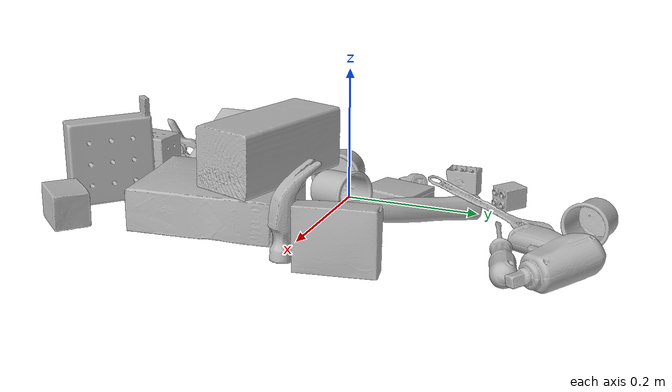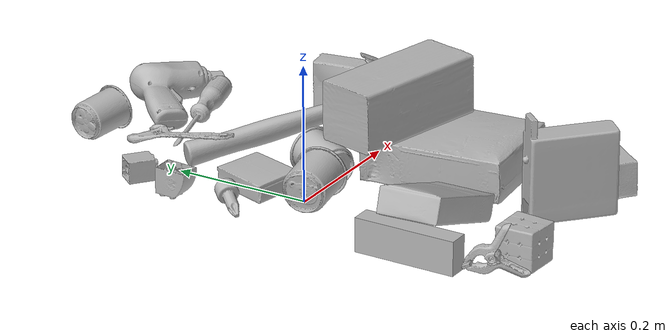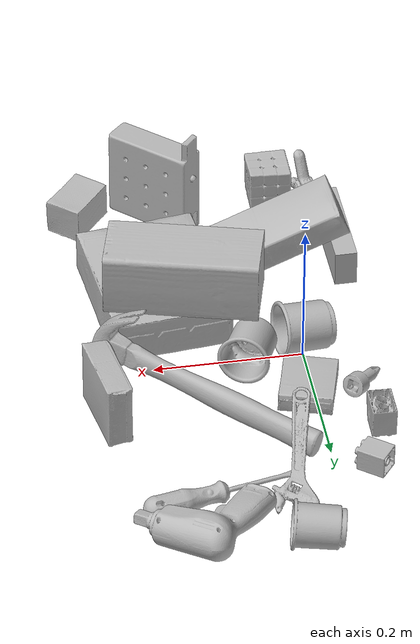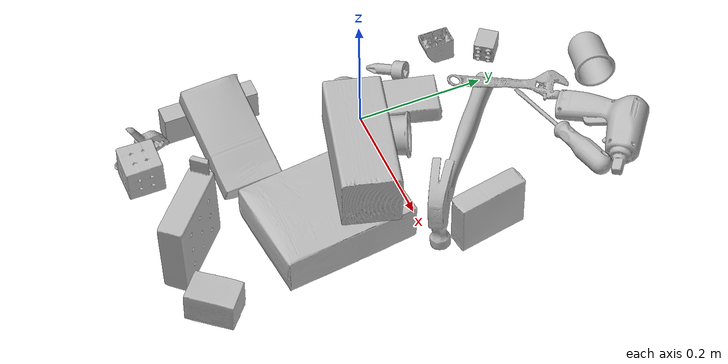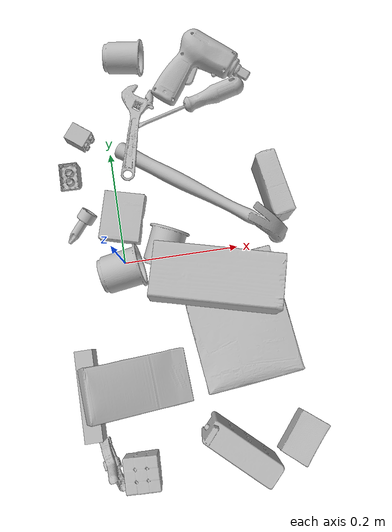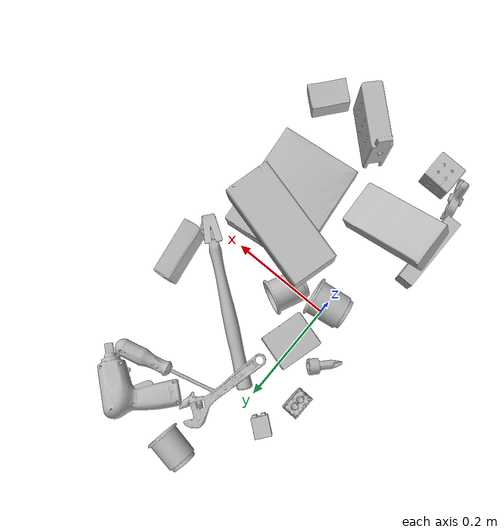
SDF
<sdf version="1.4">
  <world name="default">
    <light name="light1" type="point">
      <pose>0 0 1 0 0 0</pose>
      <diffuse>3 3 3 1</diffuse>
      <specular>3 3 3 1</specular>
    </light>
    <light name="light2" type="point">
      <pose>0 0.5 2 0 0 0</pose>
      <diffuse>1 1 1 1</diffuse>
      <specular>1 1 1 1</specular>
    </light>
    <light name="light3" type="point">
      <pose>0 0.5 2 0 0 0</pose>
      <diffuse>3 3 3 1</diffuse>
      <specular>3 3 3 1</specular>
    </light>
    <scene>
      <ambient>0.7 0.7 0.7</ambient>
    </scene>
    <model name="box21">
      <link name="link_box21">
        <collision name="default">
          <geometry>
            <mesh>
              <uri>model://cracker_box/collision_meshes/collision.obj</uri>
              <scale>1.0 1.0 1.0</scale>
            </mesh>
          </geometry>
          <surface>
            <friction>
              <ode>
                <mu>0.5</mu>
                <mu2>0.5</mu2>
              </ode>
            </friction>
          <contact>
        <ode>
            <max_vel>0</max_vel>
            <min_depth>0.0001</min_depth>
            <kp>1e8</kp>
        </ode>
    </contact></surface>
        </collision>
        <visual name="default">
          <geometry>
            <mesh>
              <uri>model://cracker_box/visual_meshes/visual.dae</uri>
              <scale>1.0 1.0 1.0</scale>
            </mesh>
          </geometry>
        </visual>
        <inertial>
          <mass>2.732837677001953</mass>
          <pose>0.000946416228543967 0.0002543424488976598 -0.0017029533628374338 -0.00031620734042352985 -0.011106490532052917 0.002546795466230165</pose>
          <inertia>
            <ixx>0.0069511193</ixx>
            <iyy>0.011477663</iyy>
            <izz>0.01637968</izz>
            <ixy>0</ixy>
            <ixz>0</ixz>
            <iyz>0</iyz>
          </inertia>
        </inertial>
      </link>
      <pose>0.17991647124290466 -0.12861032783985138 0.03553280234336853 3.1371229307878385 -0.016561978863434492 -1.4556963661200397</pose>
    </model>
    <model name="box22">
      <link name="link_box22">
        <collision name="default">
          <geometry>
            <mesh>
              <uri>model://jenga/collision_meshes/collision.obj</uri>
              <scale>1.0 1.0 1.0</scale>
            </mesh>
          </geometry>
          <surface>
            <friction>
              <ode>
                <mu>0.5</mu>
                <mu2>0.5</mu2>
              </ode>
            </friction>
          <contact>
        <ode>
            <max_vel>0</max_vel>
            <min_depth>0.0001</min_depth>
            <kp>1e8</kp>
        </ode>
    </contact></surface>
        </collision>
        <visual name="default">
          <geometry>
            <mesh>
              <uri>model://jenga/visual_meshes/visual.dae</uri>
              <scale>1.0 1.0 1.0</scale>
            </mesh>
          </geometry>
        </visual>
        <inertial>
          <mass>0.1563216596841812</mass>
          <pose>-2.502855807051674e-07 -0.00010250010382151231 -4.0923401684267446e-05 0.0 -7.34215461761844e-07 0.0</pose>
          <inertia>
            <ixx>4.3258e-05</ixx>
            <iyy>0.000293115</iyy>
            <izz>0.0003129252</izz>
            <ixy>0</ixy>
            <ixz>0</ixz>
            <iyz>0</iyz>
          </inertia>
        </inertial>
      </link>
      <pose>-0.08482448011636734 -0.21513576805591583 0.02470160648226738 1.5775282117407785 -1.1213023212785045e-05 1.5708073207957607</pose>
    </model>
    <model name="box23">
      <link name="link_box23">
        <collision name="default">
          <geometry>
            <mesh>
              <uri>model://pudding_box/collision_meshes/collision.obj</uri>
              <scale>1.0 1.0 1.0</scale>
            </mesh>
          </geometry>
          <surface>
            <friction>
              <ode>
                <mu>0.5</mu>
                <mu2>0.5</mu2>
              </ode>
            </friction>
          <contact>
        <ode>
            <max_vel>0</max_vel>
            <min_depth>0.0001</min_depth>
            <kp>1e8</kp>
        </ode>
    </contact></surface>
        </collision>
        <visual name="default">
          <geometry>
            <mesh>
              <uri>model://pudding_box/visual_meshes/visual.dae</uri>
              <scale>1.0 1.0 1.0</scale>
            </mesh>
          </geometry>
        </visual>
        <inertial>
          <mass>0.32993465662002563</mass>
          <pose>0.0004894821904599667 0.0008067885064519942 -0.0005188827635720372 0.005213102236317791 -0.0066038015122011 0.020079823288174207</pose>
          <inertia>
            <ixx>0.00037297411</ixx>
            <iyy>0.00025093966</iyy>
            <izz>0.0005507938</izz>
            <ixy>0</ixy>
            <ixz>0</ixz>
            <iyz>0</iyz>
          </inertia>
        </inertial>
      </link>
      <pose>0.2728736698627472 0.08747509121894836 0.04457632079720497 -0.02029003350159197 -1.548068470983242 -2.9612708887862342</pose>
    </model>
    <model name="cup1">
      <link name="link_cup1">
        <collision name="default">
          <geometry>
            <mesh>
              <uri>model://c_cups/collision_meshes/collision.obj</uri>
              <scale>1.0 1.0 1.0</scale>
            </mesh>
          </geometry>
          <surface>
            <friction>
              <ode>
                <mu>0.5</mu>
                <mu2>0.5</mu2>
              </ode>
            </friction>
          <contact>
        <ode>
            <max_vel>0</max_vel>
            <min_depth>0.0001</min_depth>
            <kp>1e8</kp>
        </ode>
    </contact></surface>
        </collision>
        <visual name="default">
          <geometry>
            <mesh>
              <uri>model://c_cups/visual_meshes/visual.dae</uri>
              <scale>1.0 1.0 1.0</scale>
            </mesh>
          </geometry>
        </visual>
        <inertial>
          <mass>0.05159630998969078</mass>
          <pose>0.0007237254758365452 0.0020153908990323544 -0.001275097718462348 0.3021575981944983 0.01346171900925468 -0.08771841488334552</pose>
          <inertia>
            <ixx>3.8371487e-05</ixx>
            <iyy>3.7693397e-05</iyy>
            <izz>3.3934528e-05</izz>
            <ixy>0</ixy>
            <ixz>0</ixz>
            <iyz>0</iyz>
          </inertia>
        </inertial>
      </link>
      <pose>0.04835089296102524 0.36717140674591064 0.029830537736415863 1.488048900028035 0.3881240051742751 1.3580105017236996</pose>
    </model>
    <model name="cup2">
      <link name="link_cup2">
        <collision name="default">
          <geometry>
            <mesh>
              <uri>model://d_cups/collision_meshes/collision.obj</uri>
              <scale>1.0 1.0 1.0</scale>
            </mesh>
          </geometry>
          <surface>
            <friction>
              <ode>
                <mu>0.5</mu>
                <mu2>0.5</mu2>
              </ode>
            </friction>
          <contact>
        <ode>
            <max_vel>0</max_vel>
            <min_depth>0.0001</min_depth>
            <kp>1e8</kp>
        </ode>
    </contact></surface>
        </collision>
        <visual name="default">
          <geometry>
            <mesh>
              <uri>model://d_cups/visual_meshes/visual.dae</uri>
              <scale>1.0 1.0 1.0</scale>
            </mesh>
          </geometry>
        </visual>
        <inertial>
          <mass>0.029099034145474434</mass>
          <pose>0.0008068051538430154 0.0019117402844130993 -0.0022666510194540024 0.24013101341738077 -0.2470893725106806 0.5942204262094062</pose>
          <inertia>
            <ixx>2.436274e-05</ixx>
            <iyy>2.429223e-05</iyy>
            <izz>2.2052422e-05</izz>
            <ixy>0</ixy>
            <ixz>0</ixz>
            <iyz>0</iyz>
          </inertia>
        </inertial>
      </link>
      <pose>0.07373348623514175 0.012461014091968536 0.03257007524371147 -1.4750663543090898 0.08027426732919822 -0.4271128935540581</pose>
    </model>
    <model name="box11">
      <link name="link_box11">
        <collision name="default">
          <geometry>
            <mesh>
              <uri>model://sugar_box/collision_meshes/collision.obj</uri>
              <scale>1.0 1.0 1.0</scale>
            </mesh>
          </geometry>
          <surface>
            <friction>
              <ode>
                <mu>0.5</mu>
                <mu2>0.5</mu2>
              </ode>
            </friction>
          <contact>
        <ode>
            <max_vel>0</max_vel>
            <min_depth>0.0001</min_depth>
            <kp>1e8</kp>
        </ode>
    </contact></surface>
        </collision>
        <visual name="default">
          <geometry>
            <mesh>
              <uri>model://sugar_box/visual_meshes/visual.dae</uri>
              <scale>1.0 1.0 1.0</scale>
            </mesh>
          </geometry>
        </visual>
        <inertial>
          <mass>0.6083751916885376</mass>
          <pose>0.0010343727190047503 3.849109634757042e-05 -0.00036364805418998003 -0.00040462662026216373 0.00105066363904409 0.002615379021562279</pose>
          <inertia>
            <ixx>0.0005068966</ixx>
            <iyy>0.0016383935</iyy>
            <izz>0.0019613528</izz>
            <ixy>0</ixy>
            <ixz>0</ixz>
            <iyz>0</iyz>
          </inertia>
        </inertial>
      </link>
      <pose>-0.004822131711989641 -0.20929239690303802 0.048798903822898865 3.1367900397021553 -0.35819137894444825 -3.078391272616239</pose>
    </model>
    <model name="box12">
      <link name="link_box12">
        <collision name="default">
          <geometry>
            <mesh>
              <uri>model://wood_block/collision_meshes/collision.obj</uri>
              <scale>1.0 1.0 1.0</scale>
            </mesh>
          </geometry>
          <surface>
            <friction>
              <ode>
                <mu>0.5</mu>
                <mu2>0.5</mu2>
              </ode>
            </friction>
          <contact>
        <ode>
            <max_vel>0</max_vel>
            <min_depth>0.0001</min_depth>
            <kp>1e8</kp>
        </ode>
    </contact></surface>
        </collision>
        <visual name="default">
          <geometry>
            <mesh>
              <uri>model://wood_block/visual_meshes/visual.dae</uri>
              <scale>1.0 1.0 1.0</scale>
            </mesh>
          </geometry>
        </visual>
        <inertial>
          <mass>1.904224157333374</mass>
          <pose>-5.813315510749817e-06 -0.000570809468626976 0.0002640858292579651 -0.05220878944738684 -0.005192694452018099 -0.006861378422653873</pose>
          <inertia>
            <ixx>0.00254814</ixx>
            <iyy>0.008049577</iyy>
            <izz>0.008019466</izz>
            <ixy>0</ixy>
            <ixz>0</ixz>
            <iyz>0</iyz>
          </inertia>
        </inertial>
      </link>
      <pose>0.14998751878738403 -0.060347333550453186 0.1141720861196518 -1.5941777418745975 -0.004637651811319861 -0.25951951003062274</pose>
    </model>
    <model name="box13">
      <link name="link_box13">
        <collision name="default">
          <geometry>
            <mesh>
              <uri>model://gelatin_box/collision_meshes/collision.obj</uri>
              <scale>1.0 1.0 1.0</scale>
            </mesh>
          </geometry>
          <surface>
            <friction>
              <ode>
                <mu>0.5</mu>
                <mu2>0.5</mu2>
              </ode>
            </friction>
          <contact>
        <ode>
            <max_vel>0</max_vel>
            <min_depth>0.0001</min_depth>
            <kp>1e8</kp>
        </ode>
    </contact></surface>
        </collision>
        <visual name="default">
          <geometry>
            <mesh>
              <uri>model://gelatin_box/visual_meshes/visual.dae</uri>
              <scale>1.0 1.0 1.0</scale>
            </mesh>
          </geometry>
        </visual>
        <inertial>
          <mass>0.15982484817504883</mass>
          <pose>0.0004319618456065655 0.00011156871187267825 -0.0003640321083366871 -0.001050372093012012 -0.00475581868936722 0.016440559471878533</pose>
          <inertia>
            <ixx>0.000112823305</ixx>
            <iyy>8.0589096e-05</iyy>
            <izz>0.0001717422</izz>
            <ixy>0</ixy>
            <ixz>0</ixz>
            <iyz>0</iyz>
          </inertia>
        </inertial>
      </link>
      <pose>0.00792890228331089 0.07985878735780716 0.014580635353922844 -3.125865716292575 -0.02571926780796743 -0.2639611852440251</pose>
    </model>
    <model name="box14">
      <link name="link_box14">
        <collision name="default">
          <geometry>
            <mesh>
              <uri>model://rubiks_cube/collision_meshes/collision.obj</uri>
              <scale>1.0 1.0 1.0</scale>
            </mesh>
          </geometry>
          <surface>
            <friction>
              <ode>
                <mu>0.5</mu>
                <mu2>0.5</mu2>
              </ode>
            </friction>
          <contact>
        <ode>
            <max_vel>0</max_vel>
            <min_depth>0.0001</min_depth>
            <kp>1e8</kp>
        </ode>
    </contact></surface>
        </collision>
        <visual name="default">
          <geometry>
            <mesh>
              <uri>model://rubiks_cube/visual_meshes/visual.dae</uri>
              <scale>1.0 1.0 1.0</scale>
            </mesh>
          </geometry>
        </visual>
        <inertial>
          <mass>0.19606205821037292</mass>
          <pose>2.6721043468569405e-05 5.256967051536776e-05 -7.264316536748083e-06 -0.05467227514375443 -0.09814085307594407 -0.03445353526761094</pose>
          <inertia>
            <ixx>0.00010833746</ixx>
            <iyy>0.000107832224</iyy>
            <izz>0.00010923522</izz>
            <ixy>0</ixy>
            <ixz>0</ixz>
            <iyz>0</iyz>
          </inertia>
        </inertial>
      </link>
      <pose>-0.014541269280016422 -0.34961894154548645 0.029330063611268997 1.5776132391425068 -0.016678240379339657 1.5463686235330774</pose>
    </model>
    <model name="cup15">
      <link name="link_cup15">
        <collision name="default">
          <geometry>
            <mesh>
              <uri>model://e_cups/collision_meshes/collision.obj</uri>
              <scale>1.0 1.0 1.0</scale>
            </mesh>
          </geometry>
          <surface>
            <friction>
              <ode>
                <mu>0.5</mu>
                <mu2>0.5</mu2>
              </ode>
            </friction>
          <contact>
        <ode>
            <max_vel>0</max_vel>
            <min_depth>0.0001</min_depth>
            <kp>1e8</kp>
        </ode>
    </contact></surface>
        </collision>
        <visual name="default">
          <geometry>
            <mesh>
              <uri>model://e_cups/visual_meshes/visual.dae</uri>
              <scale>1.0 1.0 1.0</scale>
            </mesh>
          </geometry>
        </visual>
        <inertial>
          <mass>0.09305236488580704</mass>
          <pose>0.0011355740716680884 0.0028797851409763098 -0.003882972989231348 0.6952374393777071 0.08767548394821409 -0.5235242886817723</pose>
          <inertia>
            <ixx>8.204892e-05</ixx>
            <iyy>8.5752865e-05</iyy>
            <izz>7.844823e-05</izz>
            <ixy>0</ixy>
            <ixz>0</ixz>
            <iyz>0</iyz>
          </inertia>
        </inertial>
      </link>
      <pose>-0.004500194452702999 -0.01582631841301918 0.03487663343548775 -1.479915512367207 0.4384902738117606 -1.383373073080684</pose>
    </model>
    <model name="toy1">
      <link name="link_toy1">
        <collision name="default">
          <geometry>
            <mesh>
              <uri>model://foam_brick/collision_meshes/collision.obj</uri>
              <scale>1.0 1.0 1.0</scale>
            </mesh>
          </geometry>
          <surface>
            <friction>
              <ode>
                <mu>0.5</mu>
                <mu2>0.5</mu2>
              </ode>
            </friction>
          <contact>
        <ode>
            <max_vel>0</max_vel>
            <min_depth>0.0001</min_depth>
            <kp>1e8</kp>
        </ode>
    </contact></surface>
        </collision>
        <visual name="default">
          <geometry>
            <mesh>
              <uri>model://foam_brick/visual_meshes/visual.dae</uri>
              <scale>1.0 1.0 1.0</scale>
            </mesh>
          </geometry>
        </visual>
        <inertial>
          <mass>0.27397871017456055</mass>
          <pose>-0.0002522472059354186 0.0003458441060502082 -0.00025321010616607964 -0.2940210021807357 0.01727444677850634 -0.0007449878009638903</pose>
          <inertia>
            <ixx>0.00011967903</ixx>
            <iyy>0.00019107372</iyy>
            <izz>0.00019350204</izz>
            <ixy>0</ixy>
            <ixz>0</ixz>
            <iyz>0</iyz>
          </inertia>
        </inertial>
      </link>
      <pose>0.25535938143730164 -0.33363965153694153 0.025496831163764 3.1325083533572653 0.006607246785811712 0.8787187790228751</pose>
    </model>
    <model name="toy2">
      <link name="link_toy2">
        <collision name="default">
          <geometry>
            <mesh>
              <uri>model://b_toy_airplane/collision_meshes/collision.obj</uri>
              <scale>1.0 1.0 1.0</scale>
            </mesh>
          </geometry>
          <surface>
            <friction>
              <ode>
                <mu>0.5</mu>
                <mu2>0.5</mu2>
              </ode>
            </friction>
          <contact>
        <ode>
            <max_vel>0</max_vel>
            <min_depth>0.0001</min_depth>
            <kp>1e8</kp>
        </ode>
    </contact></surface>
        </collision>
        <visual name="default">
          <geometry>
            <mesh>
              <uri>model://b_toy_airplane/visual_meshes/visual.dae</uri>
              <scale>1.0 1.0 1.0</scale>
            </mesh>
          </geometry>
        </visual>
        <inertial>
          <mass>0.24932990968227386</mass>
          <pose>0.005081362556666136 0.004015582613646984 0.00954306498169899 -0.04001809188182278 -0.04022184417958596 -0.5601502893643007</pose>
          <inertia>
            <ixx>0.0004628856</ixx>
            <iyy>0.00018501986</iyy>
            <izz>0.00057587575</izz>
            <ixy>0</ixy>
            <ixz>0</ixz>
            <iyz>0</iyz>
          </inertia>
        </inertial>
      </link>
      <pose>0.17551252245903015 0.34176063537597656 0.01697787642478943 0.18487648366304296 0.1134990765894474 -0.6648720310121619</pose>
    </model>
    <model name="toy3">
      <link name="link_toy3">
        <collision name="default">
          <geometry>
            <mesh>
              <uri>model://f_lego_duplo/collision_meshes/collision.obj</uri>
              <scale>1.0 1.0 1.0</scale>
            </mesh>
          </geometry>
          <surface>
            <friction>
              <ode>
                <mu>0.5</mu>
                <mu2>0.5</mu2>
              </ode>
            </friction>
          <contact>
        <ode>
            <max_vel>0</max_vel>
            <min_depth>0.0001</min_depth>
            <kp>1e8</kp>
        </ode>
    </contact></surface>
        </collision>
        <visual name="default">
          <geometry>
            <mesh>
              <uri>model://f_lego_duplo/visual_meshes/visual.dae</uri>
              <scale>1.0 1.0 1.0</scale>
            </mesh>
          </geometry>
        </visual>
        <inertial>
          <mass>0.027739444747567177</mass>
          <pose>2.369416324654594e-05 0.00013393194240052253 0.0018837876850739121 0.02983859902212722 -0.014425048030447486 -0.6756637170693943</pose>
          <inertia>
            <ixx>5.8614983e-06</ixx>
            <iyy>5.913718e-06</iyy>
            <izz>5.0880294e-06</izz>
            <ixy>0</ixy>
            <ixz>0</ixz>
            <iyz>0</iyz>
          </inertia>
        </inertial>
      </link>
      <pose>-0.048521172255277634 0.234675332903862 0.016207240521907806 1.579063706040582 5.0863346493082657e-05 0.9158116399142889</pose>
    </model>
    <model name="toy4">
      <link name="link_toy4">
        <collision name="default">
          <geometry>
            <mesh>
              <uri>model://d_toy_airplane/collision_meshes/collision.obj</uri>
              <scale>1.0 1.0 1.0</scale>
            </mesh>
          </geometry>
          <surface>
            <friction>
              <ode>
                <mu>0.5</mu>
                <mu2>0.5</mu2>
              </ode>
            </friction>
          <contact>
        <ode>
            <max_vel>0</max_vel>
            <min_depth>0.0001</min_depth>
            <kp>1e8</kp>
        </ode>
    </contact></surface>
        </collision>
        <visual name="default">
          <geometry>
            <mesh>
              <uri>model://d_toy_airplane/visual_meshes/visual.dae</uri>
              <scale>1.0 1.0 1.0</scale>
            </mesh>
          </geometry>
        </visual>
        <inertial>
          <mass>0.018694162368774414</mass>
          <pose>9.410315396962687e-05 -5.80932610318996e-05 -0.011728095822036266 0.0002670379770250361 0.004678992469792915 0.5194762078456472</pose>
          <inertia>
            <ixx>5.6041463e-06</ixx>
            <iyy>5.6083722e-06</iyy>
            <izz>1.6919282e-06</izz>
            <ixy>0</ixy>
            <ixz>0</ixz>
            <iyz>0</iyz>
          </inertia>
        </inertial>
      </link>
      <pose>-0.06973642855882645 0.07324579358100891 0.011044085025787354 -2.419602669391377 -1.2639555432694574 -3.0691854722642766</pose>
    </model>
    <model name="toy5">
      <link name="link_toy5">
        <collision name="default">
          <geometry>
            <mesh>
              <uri>model://d_lego_duplo/collision_meshes/collision.obj</uri>
              <scale>1.0 1.0 1.0</scale>
            </mesh>
          </geometry>
          <surface>
            <friction>
              <ode>
                <mu>0.5</mu>
                <mu2>0.5</mu2>
              </ode>
            </friction>
          <contact>
        <ode>
            <max_vel>0</max_vel>
            <min_depth>0.0001</min_depth>
            <kp>1e8</kp>
        </ode>
    </contact></surface>
        </collision>
        <visual name="default">
          <geometry>
            <mesh>
              <uri>model://d_lego_duplo/visual_meshes/visual.dae</uri>
              <scale>1.0 1.0 1.0</scale>
            </mesh>
          </geometry>
        </visual>
        <inertial>
          <mass>0.04560890793800354</mass>
          <pose>0.0028305635787546635 0.00016366137424483895 0.0008589806966483593 0.08010848326521293 -0.38355231288211744 0.0010296590748680565</pose>
          <inertia>
            <ixx>8.829212e-06</ixx>
            <iyy>1.253105e-05</iyy>
            <izz>1.2084434e-05</izz>
            <ixy>0</ixy>
            <ixz>0</ixz>
            <iyz>0</iyz>
          </inertia>
        </inertial>
      </link>
      <pose>-0.07298962771892548 0.16008304059505463 0.02165844663977623 3.12984546287459 -0.01863197824339089 1.5460880322958985</pose>
    </model>
    <model name="toy6">
      <link name="link_toy6">
        <collision name="default">
          <geometry>
            <mesh>
              <uri>model://nine_hole_peg_test/collision_meshes/collision.obj</uri>
              <scale>1.0 1.0 1.0</scale>
            </mesh>
          </geometry>
          <surface>
            <friction>
              <ode>
                <mu>0.5</mu>
                <mu2>0.5</mu2>
              </ode>
            </friction>
          <contact>
        <ode>
            <max_vel>0</max_vel>
            <min_depth>0.0001</min_depth>
            <kp>1e8</kp>
        </ode>
    </contact></surface>
        </collision>
        <visual name="default">
          <geometry>
            <mesh>
              <uri>model://nine_hole_peg_test/visual_meshes/visual.dae</uri>
              <scale>1.0 1.0 1.0</scale>
            </mesh>
          </geometry>
        </visual>
        <inertial>
          <mass>0.9848376512527466</mass>
          <pose>-0.004617386031895876 -0.009647614322602749 2.646068787726108e-05 -0.0014666785927196467 0.0007194180015025765 -0.6342414580933873</pose>
          <inertia>
            <ixx>0.0015399556</ixx>
            <iyy>0.0014378404</iyy>
            <izz>0.0026984566</izz>
            <ixy>0</ixy>
            <ixz>0</ixz>
            <iyz>0</iyz>
          </inertia>
        </inertial>
      </link>
      <pose>0.14404988288879395 -0.326534628868103 0.07401726394891739 1.5585101650172883 -0.007628828077559427 2.403268440269136</pose>
    </model>
    <model name="hardware1">
      <link name="link_hardware1">
        <collision name="default">
          <geometry>
            <mesh>
              <uri>model://hammer/collision_meshes/collision.obj</uri>
              <scale>1.0 1.0 1.0</scale>
            </mesh>
          </geometry>
          <surface>
            <friction>
              <ode>
                <mu>0.5</mu>
                <mu2>0.5</mu2>
              </ode>
            </friction>
          <contact>
        <ode>
            <max_vel>0</max_vel>
            <min_depth>0.0001</min_depth>
            <kp>1e8</kp>
        </ode>
    </contact></surface>
        </collision>
        <visual name="default">
          <geometry>
            <mesh>
              <uri>model://hammer/visual_meshes/visual.dae</uri>
              <scale>1.0 1.0 1.0</scale>
            </mesh>
          </geometry>
        </visual>
        <inertial>
          <mass>0.19812075793743134</mass>
          <pose>0.009415780194103718 -0.011892358772456646 -0.00012350631004665047 0.023155553199567438 -0.004792165144826806 -0.012760319769687977</pose>
          <inertia>
            <ixx>8.4865314e-05</ixx>
            <iyy>0.0022996028</iyy>
            <izz>0.0023654876</izz>
            <ixy>0</ixy>
            <ixz>0</ixz>
            <iyz>0</iyz>
          </inertia>
        </inertial>
      </link>
      <pose>0.15474572777748108 0.09463413059711456 0.05389232933521271 1.642858962055681 -0.1438013613393015 -0.6554889723315548</pose>
    </model>
    <model name="hardware2">
      <link name="link_hardware2">
        <collision name="default">
          <geometry>
            <mesh>
              <uri>model://medium_clamp/collision_meshes/collision.obj</uri>
              <scale>1.0 1.0 1.0</scale>
            </mesh>
          </geometry>
          <surface>
            <friction>
              <ode>
                <mu>0.5</mu>
                <mu2>0.5</mu2>
              </ode>
            </friction>
          <contact>
        <ode>
            <max_vel>0</max_vel>
            <min_depth>0.0001</min_depth>
            <kp>1e8</kp>
        </ode>
    </contact></surface>
        </collision>
        <visual name="default">
          <geometry>
            <mesh>
              <uri>model://medium_clamp/visual_meshes/visual.dae</uri>
              <scale>1.0 1.0 1.0</scale>
            </mesh>
          </geometry>
        </visual>
        <inertial>
          <mass>0.022759946063160896</mass>
          <pose>0.005390991922467947 0.00039532387745566666 -0.0001222159044118598 -0.0012269199415174078 0.0025845019151957355 0.03820777718195871</pose>
          <inertia>
            <ixx>6.200628e-06</ixx>
            <iyy>9.023669e-06</iyy>
            <izz>1.3899154e-05</izz>
            <ixy>0</ixy>
            <ixz>0</ixz>
            <iyz>0</iyz>
          </inertia>
        </inertial>
      </link>
      <pose>-0.06272877752780914 -0.33171752095222473 0.024362312629818916 1.5765623288546946 0.3934690494963307 1.8227444291524646</pose>
    </model>
    <model name="hardware3">
      <link name="link_hardware3">
        <collision name="default">
          <geometry>
            <mesh>
              <uri>model://flat_screwdriver/collision_meshes/collision.obj</uri>
              <scale>1.0 1.0 1.0</scale>
            </mesh>
          </geometry>
          <surface>
            <friction>
              <ode>
                <mu>0.5</mu>
                <mu2>0.5</mu2>
              </ode>
            </friction>
          <contact>
        <ode>
            <max_vel>0</max_vel>
            <min_depth>0.0001</min_depth>
            <kp>1e8</kp>
        </ode>
    </contact></surface>
        </collision>
        <visual name="default">
          <geometry>
            <mesh>
              <uri>model://flat_screwdriver/visual_meshes/visual.dae</uri>
              <scale>1.0 1.0 1.0</scale>
            </mesh>
          </geometry>
        </visual>
        <inertial>
          <mass>0.09131896495819092</mass>
          <pose>-0.0489187091588974 -0.0006576800951734185 -0.0006140916375443339 -0.5615616021105532 -0.003233725851923771 0.0069822762955213</pose>
          <inertia>
            <ixx>1.0789267e-05</ixx>
            <iyy>0.00013697217</iyy>
            <izz>0.00013690875</izz>
            <ixy>0</ixy>
            <ixz>0</ixz>
            <iyz>0</iyz>
          </inertia>
        </inertial>
      </link>
      <pose>0.15392160415649414 0.2683544158935547 0.014353195205330849 -2.8572444828417174 0.032963962252550556 -2.8867488411569577</pose>
    </model>
    <model name="hardware4">
      <link name="link_hardware4">
        <collision name="default">
          <geometry>
            <mesh>
              <uri>model://adjustable_wrench/collision_meshes/collision.obj</uri>
              <scale>1.0 1.0 1.0</scale>
            </mesh>
          </geometry>
          <surface>
            <friction>
              <ode>
                <mu>0.5</mu>
                <mu2>0.5</mu2>
              </ode>
            </friction>
          <contact>
        <ode>
            <max_vel>0</max_vel>
            <min_depth>0.0001</min_depth>
            <kp>1e8</kp>
        </ode>
    </contact></surface>
        </collision>
        <visual name="default">
          <geometry>
            <mesh>
              <uri>model://adjustable_wrench/visual_meshes/visual.dae</uri>
              <scale>1.0 1.0 1.0</scale>
            </mesh>
          </geometry>
        </visual>
        <inertial>
          <mass>0.023054517805576324</mass>
          <pose>0.03740980476140976 -0.0028968877159059048 -0.0011149226920679212 -0.01447335734168526 0.006656027895675122 -0.010954173130845575</pose>
          <inertia>
            <ixx>4.7184403e-06</ixx>
            <iyy>5.5223813e-05</iyy>
            <izz>5.969163e-05</izz>
            <ixy>0</ixy>
            <ixz>0</ixz>
            <iyz>0</iyz>
          </inertia>
        </inertial>
      </link>
      <pose>0.05175870284438133 0.23145079612731934 0.02799118682742119 3.1338372273639883 0.2788585921672569 1.3664343637069396</pose>
    </model>
  <physics type="ode">
      <max_contacts>50</max_contacts>
      <ode>
        <solver>
          <type>quick</type>
          <iters>75</iters>
        </solver>
        <constraints>
          <contact_max_correcting_vel>0</contact_max_correcting_vel>
          <contact_surface_layer>0</contact_surface_layer>
        </constraints>
      </ode>
    </physics></world>
</sdf>
